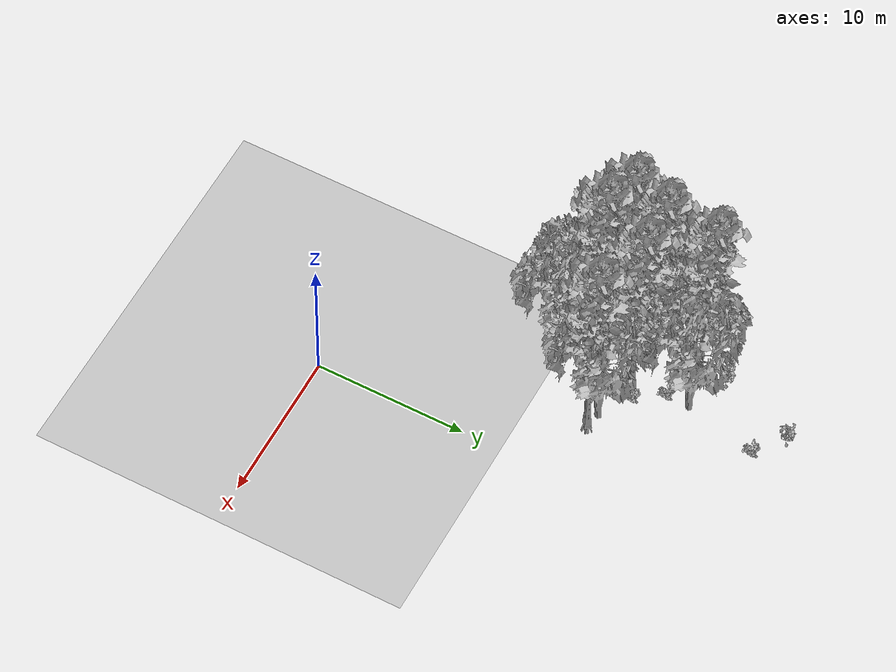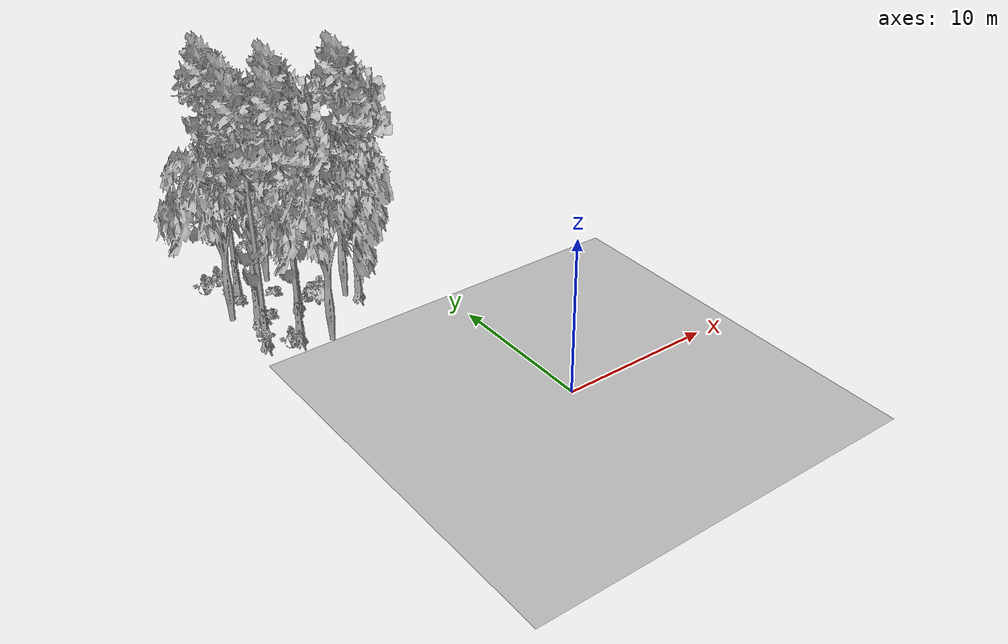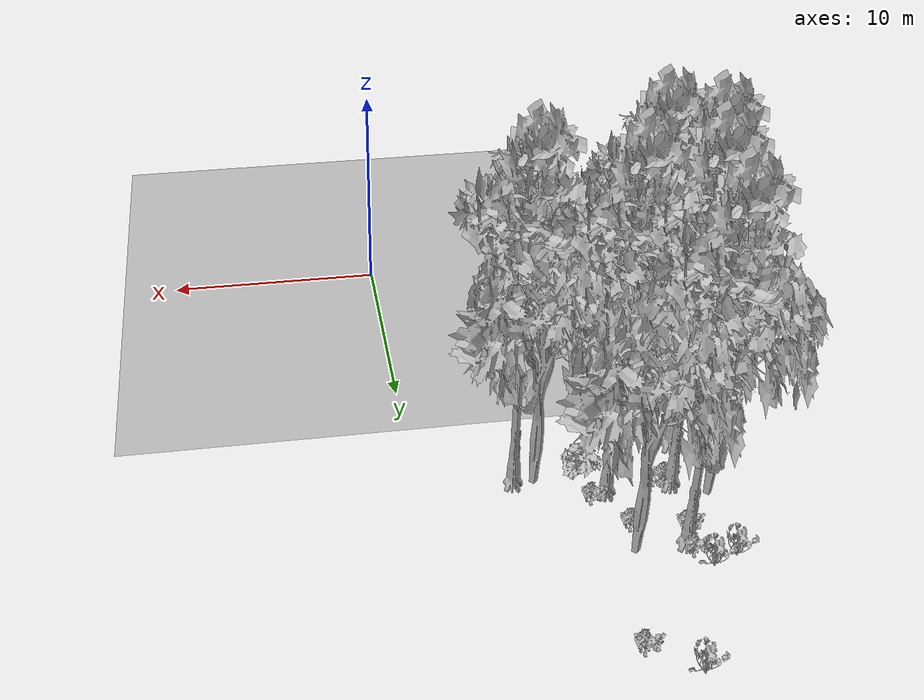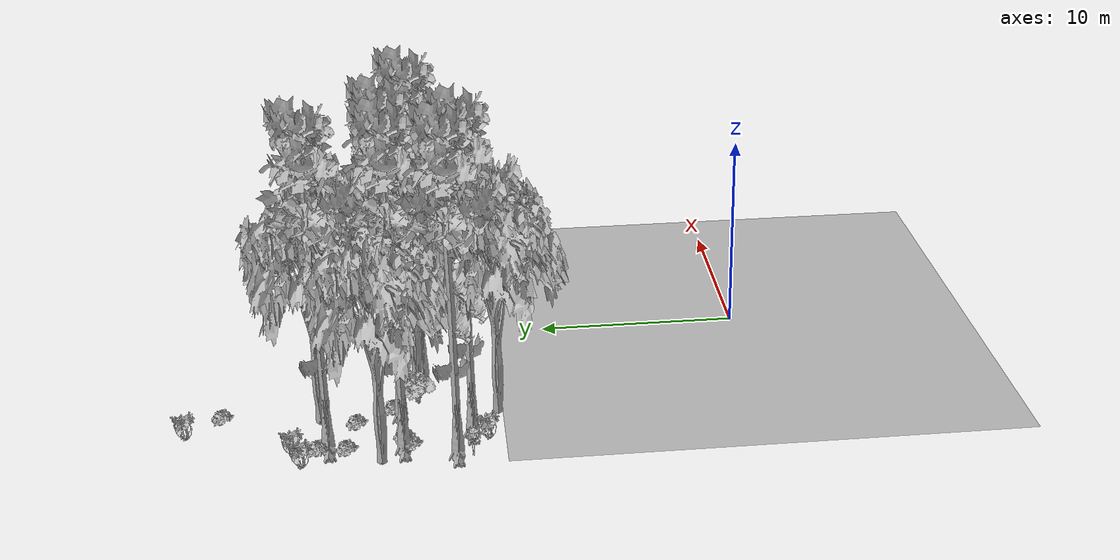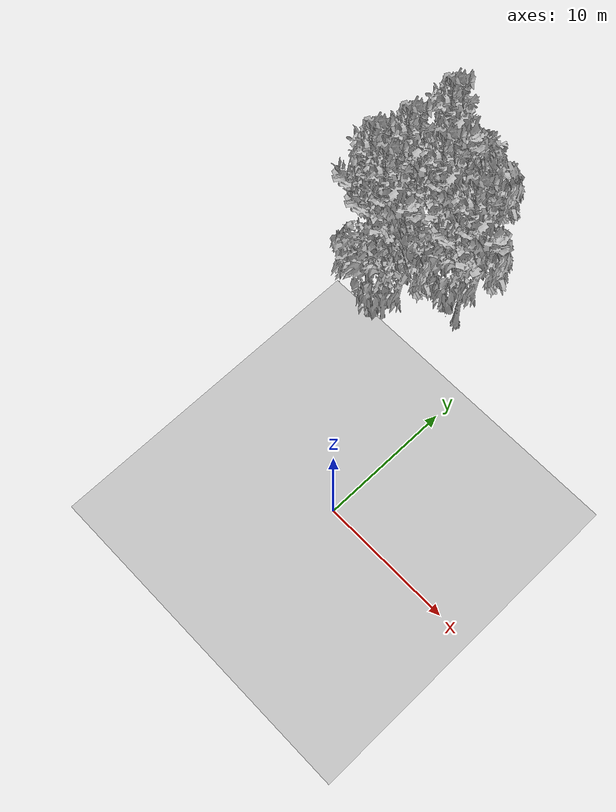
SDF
<sdf version="1.7">
 <world name="default">
  <model name="ground_plane">
   <static>1</static>
   <link name="link">
    <collision name="collision">
     <pose>-50 0 0 0 -0 0</pose>
     <geometry><plane><normal>0 0 1</normal><size>80 80</size></plane></geometry>
     <surface><contact><ode><min_depth>0.01</min_depth><max_vel>0</max_vel></ode></contact></surface>
    </collision>
    <visual name="grass">
     <cast_shadows>0</cast_shadows>
     <geometry>
      <mesh>
       <scale>0.46714285714285714 0.46714285714285714 0.1</scale>
       <uri>file://grass_plane/meshes/grass_plane.dae</uri>
      </mesh>
     </geometry>
    </visual>
   </link>
  </model>
  <model name="Tree 29">
   <static>1</static>
   <pose>-9.650099225007278 14.123276848288981 0 1.57079 -0 0</pose>
   <link name="link">
    <collision name="collision">
     <geometry><mesh><scale>3.5 5 3.5</scale><uri>model://tree_9/meshes/tree_9.obj</uri></mesh></geometry>
    </collision>
    <visual name="visual">
     <geometry><mesh><scale>3.5 5 3.5</scale><uri>model://tree_9/meshes/tree_9.obj</uri></mesh></geometry>
    </visual>
   </link>
  </model>
  <model name="Tree 63">
   <static>1</static>
   <pose>-10.805419651284137 17.362654130278166 0 1.57079 -0 0</pose>
   <link name="link">
    <collision name="collision">
     <geometry><mesh><scale>3.5 5 3.5</scale><uri>model://tree_9/meshes/tree_9.obj</uri></mesh></geometry>
    </collision>
    <visual name="visual">
     <geometry><mesh><scale>3.5 5 3.5</scale><uri>model://tree_9/meshes/tree_9.obj</uri></mesh></geometry>
    </visual>
   </link>
  </model>
  <model name="Tree 115">
   <static>1</static>
   <pose>-10.43966999828627 20.844658436640202 0 1.57079 -0 0</pose>
   <link name="link">
    <collision name="collision">
     <geometry><mesh><scale>3.5 5 3.5</scale><uri>model://tree_9/meshes/tree_9.obj</uri></mesh></geometry>
    </collision>
    <visual name="visual">
     <geometry><mesh><scale>3.5 5 3.5</scale><uri>model://tree_9/meshes/tree_9.obj</uri></mesh></geometry>
    </visual>
   </link>
  </model>
  <model name="Tree 123">
   <static>1</static>
   <pose>-12.153571874291444 18.351291984618058 0 1.57079 -0 0</pose>
   <link name="link">
    <collision name="collision">
     <geometry><mesh><scale>3.5 5 3.5</scale><uri>model://tree_2/meshes/tree_2.obj</uri></mesh></geometry>
    </collision>
    <visual name="visual">
     <geometry><mesh><scale>3.5 5 3.5</scale><uri>model://tree_2/meshes/tree_2.obj</uri></mesh></geometry>
    </visual>
   </link>
  </model>
  <model name="Tree 187">
   <static>1</static>
   <pose>-5.0843336057391255 16.644686834463684 0 1.57079 -0 0</pose>
   <link name="link">
    <collision name="collision">
     <geometry><mesh><scale>3.5 5 3.5</scale><uri>model://tree_2/meshes/tree_2.obj</uri></mesh></geometry>
    </collision>
    <visual name="visual">
     <geometry><mesh><scale>3.5 5 3.5</scale><uri>model://tree_2/meshes/tree_2.obj</uri></mesh></geometry>
    </visual>
   </link>
  </model>
  <model name="Tree 349">
   <static>1</static>
   <pose>-4.19564690337473 16.340274225547176 0 1.57079 -0 0</pose>
   <link name="link">
    <collision name="collision">
     <geometry><mesh><scale>3.5 5 3.5</scale><uri>model://tree_9/meshes/tree_9.obj</uri></mesh></geometry>
    </collision>
    <visual name="visual">
     <geometry><mesh><scale>3.5 5 3.5</scale><uri>model://tree_9/meshes/tree_9.obj</uri></mesh></geometry>
    </visual>
   </link>
  </model>
  <model name="Tree 445">
   <static>1</static>
   <pose>-8.267226341696826 12.814655745613749 0 1.57079 -0 0</pose>
   <link name="link">
    <collision name="collision">
     <geometry><mesh><scale>3.5 5 3.5</scale><uri>model://tree_2/meshes/tree_2.obj</uri></mesh></geometry>
    </collision>
    <visual name="visual">
     <geometry><mesh><scale>3.5 5 3.5</scale><uri>model://tree_2/meshes/tree_2.obj</uri></mesh></geometry>
    </visual>
   </link>
  </model>
  <model name="Tree 498">
   <static>1</static>
   <pose>-7.953077581889378 17.461586483920144 0 1.57079 -0 0</pose>
   <link name="link">
    <collision name="collision">
     <geometry><mesh><scale>3.5 5 3.5</scale><uri>model://tree_9/meshes/tree_9.obj</uri></mesh></geometry>
    </collision>
    <visual name="visual">
     <geometry><mesh><scale>3.5 5 3.5</scale><uri>model://tree_9/meshes/tree_9.obj</uri></mesh></geometry>
    </visual>
   </link>
  </model>
  <model name="Tree 524">
   <static>1</static>
   <pose>-8.256738745201588 21.24332855073996 0 1.57079 -0 0</pose>
   <link name="link">
    <collision name="collision">
     <geometry><mesh><scale>3.5 5 3.5</scale><uri>model://tree_2/meshes/tree_2.obj</uri></mesh></geometry>
    </collision>
    <visual name="visual">
     <geometry><mesh><scale>3.5 5 3.5</scale><uri>model://tree_2/meshes/tree_2.obj</uri></mesh></geometry>
    </visual>
   </link>
  </model>
  <model name="Tree 559">
   <static>1</static>
   <pose>-11.55662354048291 14.883891299217417 0 1.57079 -0 0</pose>
   <link name="link">
    <collision name="collision">
     <geometry><mesh><scale>3.5 5 3.5</scale><uri>model://tree_9/meshes/tree_9.obj</uri></mesh></geometry>
    </collision>
    <visual name="visual">
     <geometry><mesh><scale>3.5 5 3.5</scale><uri>model://tree_9/meshes/tree_9.obj</uri></mesh></geometry>
    </visual>
   </link>
  </model>
  <model name="Bush 23">
   <static>1</static>
   <pose>-11.913857377123286 14.19122691375862 0 1.57079 -0 0</pose>
   <link name="link">
    <collision name="collision">
     <geometry><mesh><scale>2 2 2</scale><uri>model://bush_5/meshes/bush_5.obj</uri></mesh></geometry>
     <surface><contact><collide_without_contact>false</collide_without_contact></contact></surface>
    </collision>
    <visual name="visual">
     <geometry><mesh><scale>2 2 2</scale><uri>model://bush_5/meshes/bush_5.obj</uri></mesh></geometry>
    </visual>
   </link>
  </model>
  <model name="Bush 101">
   <static>1</static>
   <pose>-10.523112840801335 13.404624874775017 0 1.57079 -0 0</pose>
   <link name="link">
    <collision name="collision">
     <geometry><mesh><scale>2 2 2</scale><uri>model://bush_4/meshes/bush_4.obj</uri></mesh></geometry>
     <surface><contact><collide_without_contact>false</collide_without_contact></contact></surface>
    </collision>
    <visual name="visual">
     <geometry><mesh><scale>2 2 2</scale><uri>model://bush_4/meshes/bush_4.obj</uri></mesh></geometry>
    </visual>
   </link>
  </model>
  <model name="Bush 133">
   <static>1</static>
   <pose>-7.368816237011842 17.80160920413381 0 1.57079 -0 0</pose>
   <link name="link">
    <collision name="collision">
     <geometry><mesh><scale>2 2 2</scale><uri>model://bush_2/meshes/bush_2.obj</uri></mesh></geometry>
     <surface><contact><collide_without_contact>false</collide_without_contact></contact></surface>
    </collision>
    <visual name="visual">
     <geometry><mesh><scale>2 2 2</scale><uri>model://bush_2/meshes/bush_2.obj</uri></mesh></geometry>
    </visual>
   </link>
  </model>
  <model name="Bush 187">
   <static>1</static>
   <pose>-10.7251848168613 17.007685002326014 0 1.57079 -0 0</pose>
   <link name="link">
    <collision name="collision">
     <geometry><mesh><scale>2 2 2</scale><uri>model://bush_2/meshes/bush_2.obj</uri></mesh></geometry>
     <surface><contact><collide_without_contact>false</collide_without_contact></contact></surface>
    </collision>
    <visual name="visual">
     <geometry><mesh><scale>2 2 2</scale><uri>model://bush_2/meshes/bush_2.obj</uri></mesh></geometry>
    </visual>
   </link>
  </model>
  <model name="Bush 289">
   <static>1</static>
   <pose>-8.562053112685732 19.563327130576468 0 1.57079 -0 0</pose>
   <link name="link">
    <collision name="collision">
     <geometry><mesh><scale>2 2 2</scale><uri>model://bush_2/meshes/bush_2.obj</uri></mesh></geometry>
     <surface><contact><collide_without_contact>false</collide_without_contact></contact></surface>
    </collision>
    <visual name="visual">
     <geometry><mesh><scale>2 2 2</scale><uri>model://bush_2/meshes/bush_2.obj</uri></mesh></geometry>
    </visual>
   </link>
  </model>
  <model name="Bush 308">
   <static>1</static>
   <pose>-12.060685383123868 22.007519438882014 0 1.57079 -0 0</pose>
   <link name="link">
    <collision name="collision">
     <geometry><mesh><scale>2 2 2</scale><uri>model://bush_4/meshes/bush_4.obj</uri></mesh></geometry>
     <surface><contact><collide_without_contact>false</collide_without_contact></contact></surface>
    </collision>
    <visual name="visual">
     <geometry><mesh><scale>2 2 2</scale><uri>model://bush_4/meshes/bush_4.obj</uri></mesh></geometry>
    </visual>
   </link>
  </model>
  <model name="Bush 313">
   <static>1</static>
   <pose>-6.934308406506801 16.590845967890296 0 1.57079 -0 0</pose>
   <link name="link">
    <collision name="collision">
     <geometry><mesh><scale>2 2 2</scale><uri>model://bush_1/meshes/bush_1.obj</uri></mesh></geometry>
     <surface><contact><collide_without_contact>false</collide_without_contact></contact></surface>
    </collision>
    <visual name="visual">
     <geometry><mesh><scale>2 2 2</scale><uri>model://bush_1/meshes/bush_1.obj</uri></mesh></geometry>
    </visual>
   </link>
  </model>
  <model name="Bush 331">
   <static>1</static>
   <pose>-10.820584059953596 19.987052612502396 0 1.57079 -0 0</pose>
   <link name="link">
    <collision name="collision">
     <geometry><mesh><scale>2 2 2</scale><uri>model://bush_2/meshes/bush_2.obj</uri></mesh></geometry>
     <surface><contact><collide_without_contact>false</collide_without_contact></contact></surface>
    </collision>
    <visual name="visual">
     <geometry><mesh><scale>2 2 2</scale><uri>model://bush_2/meshes/bush_2.obj</uri></mesh></geometry>
    </visual>
   </link>
  </model>
  <model name="Bush 339">
   <static>1</static>
   <pose>-7.358031989558608 25.944394410216404 0 1.57079 -0 0</pose>
   <link name="link">
    <collision name="collision">
     <geometry><mesh><scale>2 2 2</scale><uri>model://bush_2/meshes/bush_2.obj</uri></mesh></geometry>
     <surface><contact><collide_without_contact>false</collide_without_contact></contact></surface>
    </collision>
    <visual name="visual">
     <geometry><mesh><scale>2 2 2</scale><uri>model://bush_2/meshes/bush_2.obj</uri></mesh></geometry>
    </visual>
   </link>
  </model>
  <model name="Bush 390">
   <static>1</static>
   <pose>-10.037119074525314 17.344619939192683 0 1.57079 -0 0</pose>
   <link name="link">
    <collision name="collision">
     <geometry><mesh><scale>2 2 2</scale><uri>model://bush_2/meshes/bush_2.obj</uri></mesh></geometry>
     <surface><contact><collide_without_contact>false</collide_without_contact></contact></surface>
    </collision>
    <visual name="visual">
     <geometry><mesh><scale>2 2 2</scale><uri>model://bush_2/meshes/bush_2.obj</uri></mesh></geometry>
    </visual>
   </link>
  </model>
  <model name="Bush 435">
   <static>1</static>
   <pose>-11.008512426260669 22.426485395429914 0 1.57079 -0 0</pose>
   <link name="link">
    <collision name="collision">
     <geometry><mesh><scale>2 2 2</scale><uri>model://bush_4/meshes/bush_4.obj</uri></mesh></geometry>
     <surface><contact><collide_without_contact>false</collide_without_contact></contact></surface>
    </collision>
    <visual name="visual">
     <geometry><mesh><scale>2 2 2</scale><uri>model://bush_4/meshes/bush_4.obj</uri></mesh></geometry>
    </visual>
   </link>
  </model>
  <model name="Bush 437">
   <static>1</static>
   <pose>-8.978132809129985 27.50058310151873 0 1.57079 -0 0</pose>
   <link name="link">
    <collision name="collision">
     <geometry><mesh><scale>2 2 2</scale><uri>model://bush_4/meshes/bush_4.obj</uri></mesh></geometry>
     <surface><contact><collide_without_contact>false</collide_without_contact></contact></surface>
    </collision>
    <visual name="visual">
     <geometry><mesh><scale>2 2 2</scale><uri>model://bush_4/meshes/bush_4.obj</uri></mesh></geometry>
    </visual>
   </link>
  </model>
  <model name="Bush 624">
   <static>1</static>
   <pose>-10.691214726638595 21.314207742225186 0 1.57079 -0 0</pose>
   <link name="link">
    <collision name="collision">
     <geometry><mesh><scale>2 2 2</scale><uri>model://bush_2/meshes/bush_2.obj</uri></mesh></geometry>
     <surface><contact><collide_without_contact>false</collide_without_contact></contact></surface>
    </collision>
    <visual name="visual">
     <geometry><mesh><scale>2 2 2</scale><uri>model://bush_2/meshes/bush_2.obj</uri></mesh></geometry>
    </visual>
   </link>
  </model>
 </world>
</sdf>
